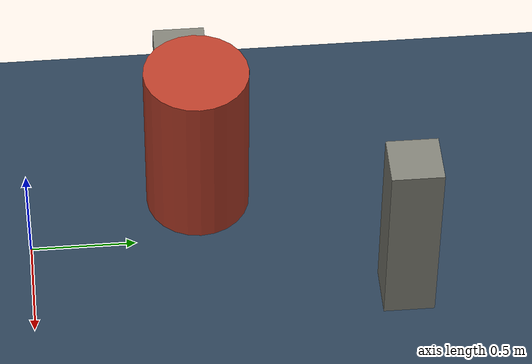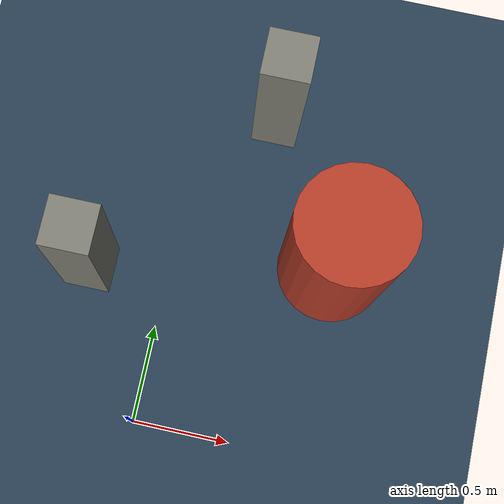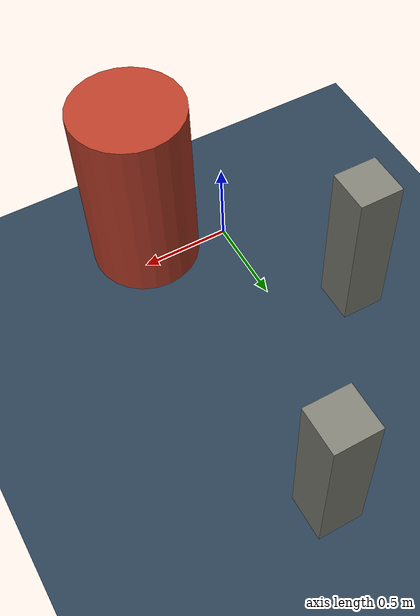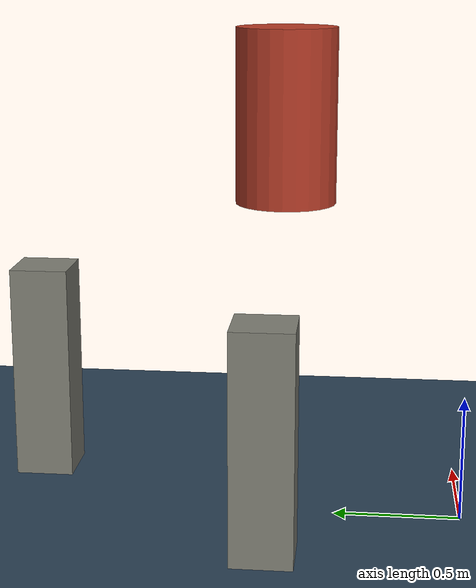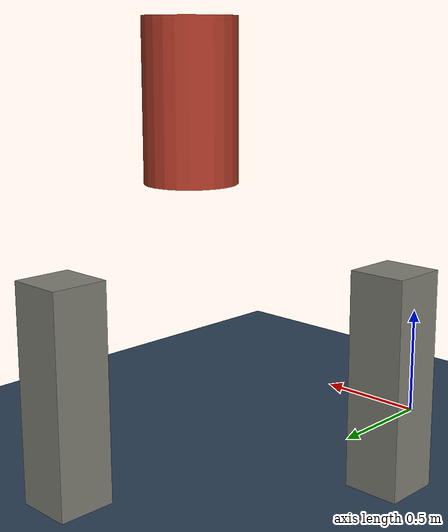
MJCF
<mujoco model="TinyRacer turning obstacle">
  <option integrator="RK4" density="1.225" viscosity="1.8e-5" timestep="0.001"/>
  <compiler inertiafromgeom="false" autolimits="true"/>
  <statistic center="0.4 0.75 1.2" extent="3.0"/>
  <visual><headlight diffuse="0.58 0.58 0.58" ambient="0.36 0.36 0.36" specular="0 0 0"/><global azimuth="20" elevation="-25" ellipsoidinertia="true"/></visual>
  <asset>
    <texture type="skybox" builtin="gradient" rgb1="0.56 0.63 0.68" rgb2="0.20 0.24 0.27" width="512" height="3072"/>
    <texture type="2d" name="groundplane" builtin="checker" mark="edge" rgb1="0.22 0.31 0.39" rgb2="0.11 0.19 0.27" markrgb="0.8 0.8 0.8" width="512" height="512"/>
    <material name="groundplane" texture="groundplane" texuniform="true" texrepeat="3 3" reflectance="0.15"/>
  </asset>
  <worldbody>
    <light pos="0 0 4" dir="0 0 -1" directional="true"/>
    <light pos="2 -1 2.8" dir="-0.4 0.3 -1" diffuse="0.4 0.4 0.38"/>
    <geom name="floor" size="0 0 0.05" type="plane" material="groundplane"/>
    <geom name="turn_cylinder" type="cylinder" pos="0.75 0.75 1.5" size="0.22 0.38" rgba="0.72 0.24 0.16 1" contype="1" conaffinity="1"/>
    <geom name="turn_landmark_a" type="box" pos="-0.4 0.75 0.45" size="0.12 0.12 0.45" rgba="0.50 0.50 0.46 1" contype="1" conaffinity="1"/>
    <geom name="turn_landmark_b" type="box" pos="0.4 1.75 0.45" size="0.12 0.12 0.45" rgba="0.50 0.50 0.46 1" contype="1" conaffinity="1"/>
  </worldbody>
</mujoco>
